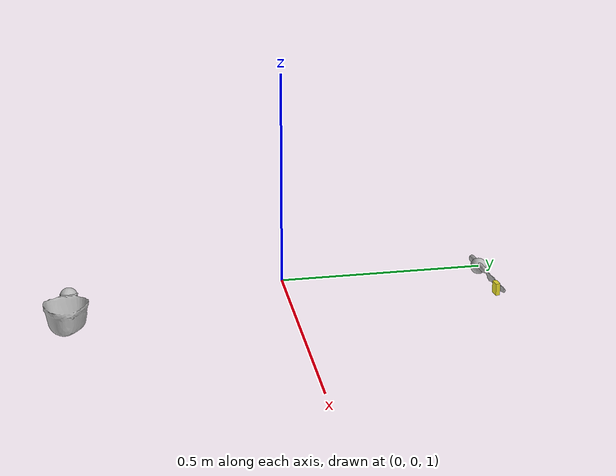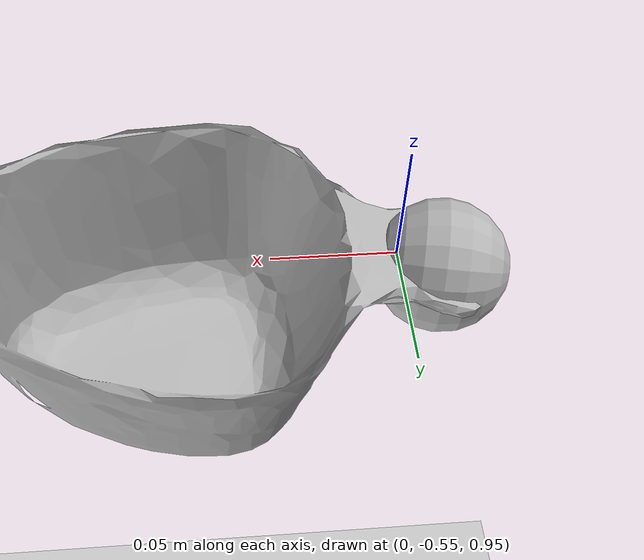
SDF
<?xml version='1.0'?>
<sdf version="1.6">
    <world name="b_wildo_bowl_b_table_knife_v">

        <include>
            <uri>model://sun</uri>
        </include>

        <include>
            <uri>model://ground_plane</uri>
        </include>

        <include>
            <uri>model://b_table_knife</uri>
            <pose>0.060878 0.497562 1.005864 1.616805 0 0</pose>
        </include>

        <include>
            <uri>model://butter_box</uri>
            <pose>0.135713 0.488941 1.003983 0.274231 1.507716 1.875637</pose>
            <plugin name="stick" filename="libStickPlugin.so">
              <parentLinkName>link</parentLinkName>
              <childLinkName>b_table_knife::link</childLinkName>
              <force>5</force>
            </plugin>
        </include>

        <include>
            <uri>model://b_wildo_bowl</uri>
            <pose>0.078818 -0.501749 0.988186 3.097035 0 0</pose>
        </include>

        <!-- Left Gripper -->
        <include>
            <uri>model://gripper</uri>
            <name>left_ee</name>
            <pose>0 0.5 1 0 0 0</pose>

            <plugin name="l_force_controller" filename="libvelocity_controller_plugin.so">
              <linkName>link</linkName>
              <topicName>set_l_ee_twist</topicName>
              <gains>
                <linear>
                  <P>100.0</P>
                  <I>0.0</I>
                  <D>25.0</D>
                </linear>
                <angular>
                  <P>100.0</P>
                  <I>0.0</I>
                  <D>25.0</D>
                </angular>
              </gains>
            </plugin>

            <plugin name="l_grip" filename="libGripPlugin.so">
              <parentLinkName>link</parentLinkName>
              <childLinkName>b_table_knife::link</childLinkName>
              <relativePose>0.060878 -0.002438 0.005864 1.6168 0 0</relativePose>
            </plugin>

            <plugin name="l_tf_broadcaster" filename="libtf_broadcaster_plugin.so">
              <linkName>link</linkName>
              <frameName>l_gripper_tool_frame</frameName>
            </plugin>
        </include>

        <!-- Right Gripper -->
        <include>
            <uri>model://gripper</uri>
            <name>right_ee</name>
            <pose>0 -0.5 1 1.547368 1.402341 1.343703</pose>

            <plugin name="r_force_controller" filename="libvelocity_controller_plugin.so">
              <linkName>link</linkName>
              <topicName>set_r_ee_twist</topicName>
              <gains>
                <linear>
                  <P>100.0</P>
                  <I>0.0</I>
                  <D>25.0</D>
                </linear>
                <angular>
                  <P>100.0</P>
                  <I>0.0</I>
                  <D>25.0</D>
                </angular>
              </gains>
            </plugin>

            <plugin name="r_grip" filename="libGripPlugin.so">
              <parentLinkName>link</parentLinkName>
              <childLinkName>b_wildo_bowl::link</childLinkName>
              <relativePose>0.0089419 0.0135799 0.0780419 1.55636 1.32285 -1.41637</relativePose>
            </plugin>

            <plugin name="r_tf_broadcaster" filename="libtf_broadcaster_plugin.so">
              <linkName>link</linkName>
              <frameName>r_gripper_tool_frame</frameName>
            </plugin>
        </include>

        <plugin name="feature_visualization_plugin" filename="libgiskard_visualization_plugin.so"></plugin>

        <gui>
            <camera name='user_camera'>
                <pose>1.700789 1.175709 1.670612 0 0.375643 -2.675000</pose>
                <view_controller>orbit</view_controller>
            </camera>
        </gui>

    </world>
</sdf>

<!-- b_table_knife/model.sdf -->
<sdf version='1.6'>
	<model name='b_table_knife'>
		<static>false</static>
		<pose>0 0 0 0 0 0</pose>

		<link name='link'>
			<inertial>
			  <mass>0.12</mass>
			  <pose>-8.8541e-06 -4.0274e-05 -0.00010513 0 0 0</pose>
			  <inertia>
				  <ixx>3.9502e-08</ixx>
				  <ixy>0</ixy>
				  <ixz>0</ixz>
				  <iyy>4.7031e-08</iyy>
				  <iyz>0</iyz>
				  <izz>5.1447e-08</izz>
			  </inertia>
			</inertial>
			<sensor name="tool_contact_sensor" type="contact">
				<always_on>true</always_on>
				<update_rate>30.0</update_rate>
				<contact>
					<collision>collision</collision>
				</contact>
				<plugin name="tool_bumper" filename="libgazebo_ros_bumper.so">
					<bumperTopicName>tool_contact_sensor_state</bumperTopicName>
					<frameName>world</frameName>
				</plugin>
			</sensor>
			<collision name='collision'>
				<geometry>
					<mesh>
						<uri>model://b_table_knife/b_table_knife.dae</uri>
					</mesh>
				</geometry>
				<surface>
					<friction>
						<ode>
							<mu>0.2</mu>
							<mu2>0.2</mu2>
						</ode>
					</friction>
				</surface>
			</collision>
			<visual name='visual'>
				<geometry>
					<mesh>
						<uri>model://b_table_knife/b_table_knife.dae</uri>
					</mesh>
				</geometry>
			</visual>
		</link>
	</model>
</sdf>

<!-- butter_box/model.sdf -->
<sdf version='1.6'>
    <model name='butter_box'>
        <static>false</static>
        <pose>0 0 0 0 0 0</pose>
        <link name='link'>
            <pose>0 0 0 0 0 0</pose>
            <inertial>
                <mass>0.001</mass>
                <pose>0 0 0 0 0 0</pose>
                <inertia>
                    <ixx>0.00000004167</ixx>
                    <iyy>0.00000008333</iyy>
                    <izz>0.00000010833</izz>
                    <ixy>0</ixy>
                    <ixz>0</ixz>
                    <iyz>0</iyz>
                </inertia>
            </inertial>
            <collision name='collision'>
                <geometry>
                    <box>
                        <size>0.03 0.02 0.01</size>
                    </box>
                </geometry>
                <surface>
                    <friction>
                        <ode>
                            <mu>0.2</mu>
                            <mu2>0.2</mu2>
                        </ode>
                    </friction>
                </surface>
            </collision>
            <visual name='visual'>
                <geometry>
                    <box>
                        <size>0.03 0.02 0.01</size>
                    </box>
                </geometry>
                <material>
                    <script>
                        <name>Gazebo/Yellow</name>
                        <uri>file://media/materials/scripts/gazebo.material</uri>
                    </script>
                </material>
            </visual>
        </link>
    </model>
</sdf>

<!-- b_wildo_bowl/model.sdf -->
<sdf version='1.6'>
    <model name='b_wildo_bowl'>
        <static>false</static>
        <pose>0 0 0 0 0 0</pose>

        <link name='link'>
            <inertial>
                <mass>0.40</mass>
                <pose>0.000382297035518770	-0.000149204207528814	0.00495379249275721 0 0 0</pose>
                <inertia>
                    <ixx>7.972462473661376e-05</ixx>
                    <ixy>0.0</ixy>
                    <ixz>0.0</ixz>
                    <iyy>9.743942735555959e-05</iyy>
                    <iyz>0.0</iyz>
                    <izz>3.897022921041362e-05</izz>
                </inertia>
            </inertial>

            <collision name='collision'>
                <geometry>
                    <mesh>
                        <uri>model://b_wildo_bowl/b_wildo_bowl.dae</uri>
                    </mesh>
                </geometry>
                <surface>
                    <friction>
                        <ode>
                            <mu>0.2</mu>
                            <mu2>0.2</mu2>
                        </ode>
                    </friction>
                </surface>
            </collision>
            <visual name='visual'>
                <geometry>
                    <mesh>
                        <uri>model://b_wildo_bowl/b_wildo_bowl.dae</uri>
                    </mesh>
                </geometry>
            </visual>
        </link>
    </model>
</sdf>

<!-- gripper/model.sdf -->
<sdf version='1.6'>
    <model name='gripper'>
        <static>false</static>
        <allow_auto_disable>false</allow_auto_disable>

        <pose>0 0 0 0 0 0</pose>

        <link name='link'>
            <pose>0 0 0 0 0 0</pose>

            <gravity>false</gravity>

            <visual name='visual'>
                <geometry>
                    <sphere>
                        <radius>0.02</radius>
                    </sphere>
                </geometry>
            </visual>

        </link>
    </model>
</sdf>
